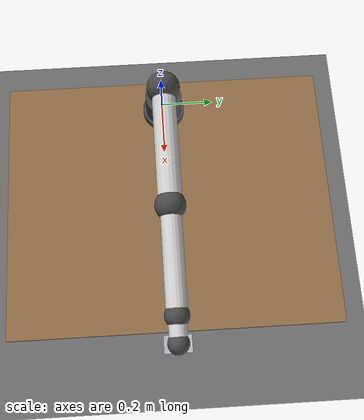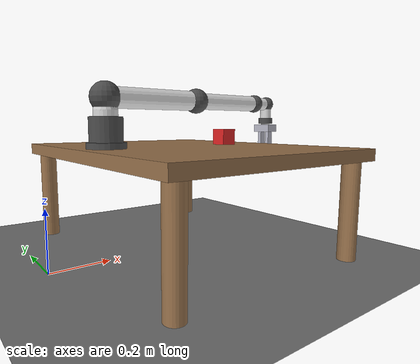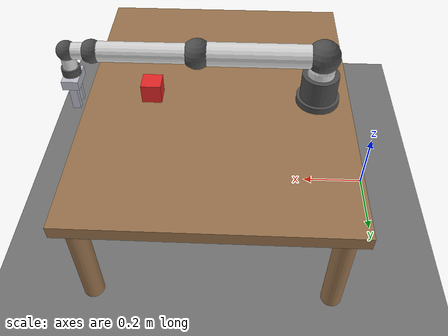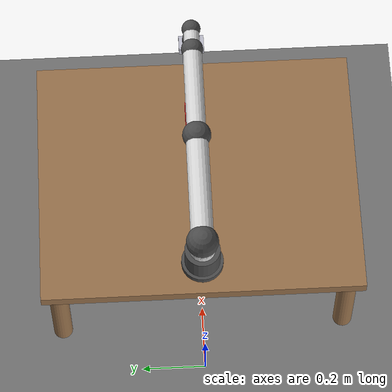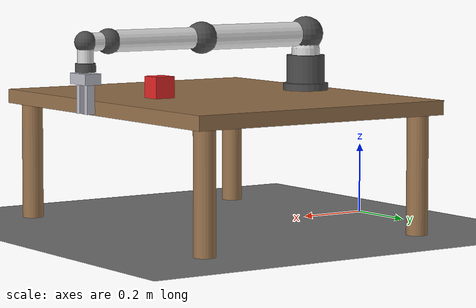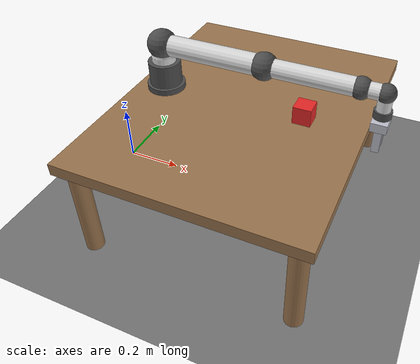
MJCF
<mujoco model="jaka_zu5_sim">
  <compiler angle="radian" meshdir="." autolimits="true"/>

  <option timestep="0.002" gravity="0 0 -9.81" integrator="implicitfast" noslip_iterations="3"/>

  <visual>
    <quality shadowsize="0"/>
  </visual>

  <default>
    <joint damping="5" armature="0.1"/>
    <geom condim="4" friction="1 0.5 0.01"/>
    <position kp="100" ctrlrange="-6.2832 6.2832"/>
  </default>

  <asset>
    <texture name="grid" type="2d" builtin="checker" rgb1="0.4 0.4 0.4" rgb2="0.5 0.5 0.5" width="512" height="512"/>
    <material name="grid_mat" texture="grid" texrepeat="8 8" reflectance="0.1"/>
    <material name="arm_mat" rgba="0.85 0.85 0.85 1"/>
    <material name="joint_mat" rgba="0.3 0.3 0.3 1"/>
    <material name="gripper_mat" rgba="0.75 0.75 0.8 1" specular="0.4" shininess="0.3"/>
    <material name="table_mat" rgba="0.6 0.45 0.3 1"/>
    <material name="red_mat" rgba="0.9 0.15 0.15 1"/>
    <material name="green_mat" rgba="0.15 0.8 0.15 1"/>
  </asset>

  <worldbody>
    <!-- Floor -->
    <geom name="floor" type="plane" size="2 2 0.01" material="grid_mat" pos="0 0 0"/>
    <light name="overhead" pos="0.5 0 2.5" dir="0 0 -1" diffuse="0.8 0.8 0.8" specular="0.3 0.3 0.3"/>
    <light name="fill" pos="-1 1 2" dir="0.3 -0.3 -1" diffuse="0.4 0.4 0.4"/>

    <!-- Table -->
    <body name="table" pos="0.5 0 0.35">
      <geom name="table_top" type="box" size="0.4 0.5 0.02" pos="0 0 0" material="table_mat" mass="20"/>
      <geom name="table_leg1" type="cylinder" size="0.03 0.175" pos="0.35 0.45 -0.195" material="table_mat"/>
      <geom name="table_leg2" type="cylinder" size="0.03 0.175" pos="-0.35 0.45 -0.195" material="table_mat"/>
      <geom name="table_leg3" type="cylinder" size="0.03 0.175" pos="0.35 -0.45 -0.195" material="table_mat"/>
      <geom name="table_leg4" type="cylinder" size="0.03 0.175" pos="-0.35 -0.45 -0.195" material="table_mat"/>
    </body>

    <!-- Objects on table -->
    <body name="red_cube" pos="0.70 0 0.400">
      <freejoint name="red_cube_joint"/>
      <geom name="red_cube_geom" type="box" size="0.03 0.03 0.03" material="red_mat" mass="0.08" friction="3 0.5 0.01" solref="0.01 1" solimp="0.99 0.99 0.01"/>
    </body>
<!-- JAKA Zu5 Robot Arm (mounted on table) -->
    <body name="base_link" pos="0.2 0 0.37">
      <geom name="base_geom" type="cylinder" size="0.065 0.02" material="joint_mat" mass="0.515"/>

      <!-- Joint 1: Base rotation (Z-axis) -->
      <body name="link1" pos="0 0 0.041">
        <joint name="joint1" type="hinge" axis="0 0 1" range="-6.2832 6.2832" damping="80"/>
        <geom name="link1_base" type="cylinder" size="0.055 0.04" pos="0 0 0.02" material="joint_mat" mass="0.5"/>
        <geom name="link1_arm" type="capsule" fromto="0 0 0.04 0 0 0.08" size="0.04" material="arm_mat" mass="1.428"/>

        <!-- Joint 2: Shoulder (Y-axis, pitch) -->
        <body name="link2" pos="0 0 0.121">
          <joint name="joint2" type="hinge" axis="0 1 0" range="-1.4835 4.6252" damping="240"/>
          <geom name="link2_joint" type="sphere" size="0.05" material="joint_mat" mass="0.5"/>
          <geom name="link2_arm" type="capsule" fromto="0 0 0 0.36 0 0" size="0.035" material="arm_mat" mass="4.962"/>

          <!-- Joint 3: Elbow (Y-axis, pitch) -->
          <body name="link3" pos="0.36 0 0">
            <joint name="joint3" type="hinge" axis="0 1 0" range="-3.0543 3.0543" damping="160"/>
            <geom name="link3_joint" type="sphere" size="0.045" material="joint_mat" mass="0.4"/>
            <geom name="link3_arm" type="capsule" fromto="0 0 0 0.303 0 0" size="0.03" material="arm_mat" mass="1.710"/>

            <!-- Joint 4: Wrist 1 (X-axis, roll) -->
            <body name="link4" pos="0.303 0 0">
              <joint name="joint4" type="hinge" axis="1 0 0" range="-1.4835 4.6252" damping="40"/>
              <geom name="link4_joint" type="sphere" size="0.035" material="joint_mat" mass="0.2"/>
              <geom name="link4_arm" type="capsule" fromto="0 0 0 0.073 0 0" size="0.025" material="arm_mat" mass="0.507"/>

              <!-- Joint 5: Wrist 2 (Y-axis, pitch) -->
              <body name="link5" pos="0.073 0 0">
                <joint name="joint5" type="hinge" axis="0 1 0" range="-6.2832 6.2832" damping="80"/>
                <geom name="link5_joint" type="sphere" size="0.03" material="joint_mat" mass="0.2"/>
                <geom name="link5_arm" type="capsule" fromto="0 0 0 0 0 -0.069" size="0.022" material="arm_mat" mass="0.607"/>

                <!-- Joint 6: Wrist 3 (Z-axis, roll) -->
                <body name="link6" pos="0 0 -0.069">
                  <joint name="joint6" type="hinge" axis="0 0 1" range="-6.2832 6.2832" damping="20"/>
                  <geom name="link6_flange" type="cylinder" size="0.028 0.012" material="joint_mat" mass="0.180"/>

                  <!-- 2-Finger Parallel Gripper -->
                  <body name="gripper_base" pos="0 0 -0.03">
                    <geom name="gripper_mount" type="box" size="0.025 0.04 0.015" material="gripper_mat" mass="0.3"/>

                    <!-- Left Finger -->
                    <body name="left_finger" pos="0 0.02 -0.015">
                      <joint name="finger_left" type="slide" axis="0 1 0" range="0 0.04" damping="5"/>
                      <geom name="left_finger_geom" type="box" size="0.012 0.008 0.04" pos="0 0 -0.04" material="gripper_mat" mass="0.05" friction="3 0.5 0.01" solref="0.01 1" solimp="0.99 0.99 0.01"/>
                    </body>

                    <!-- Right Finger (mirrored) -->
                    <body name="right_finger" pos="0 -0.02 -0.015">
                      <joint name="finger_right" type="slide" axis="0 -1 0" range="0 0.04" damping="5"/>
                      <geom name="right_finger_geom" type="box" size="0.012 0.008 0.04" pos="0 0 -0.04" material="gripper_mat" mass="0.05" friction="3 0.5 0.01" solref="0.01 1" solimp="0.99 0.99 0.01"/>
                    </body>

                    <!-- Wrist Camera -->
                    <camera name="wrist_cam" pos="0.4920 0.0127 0.2826" xyaxes="0.0052 1.0000 0.0001 -0.7062 0.0036 0.7080" fovy="41"/>
                  </body>
                </body>
              </body>
            </body>
          </body>
        </body>
      </body>
    </body>

    <!-- External Camera (fixed, 45-degree overhead view of workspace) -->
    <camera name="external_cam" pos="0.4852 0.9268 0.8646" xyaxes="-0.9999 -0.0111 0.0000 0.0042 -0.3784 0.9256" fovy="55"/>
  </worldbody>

  <!-- Gripper finger symmetry constraint -->
  <equality>
    <joint joint1="finger_left" joint2="finger_right" polycoef="0 1 0 0 0"/>
  </equality>

  <!-- Home pose: arm near workspace, gripper half-open, pointing down -->
  <!-- qpos order: red_cube(7), J1-J6(6), finger_left(1), finger_right(1) -->
  <!-- ctrl order: act_joint1-6(6), act_gripper(1) -->
  <keyframe>
    <key name="home"
         qpos="0.70 0 0.400 1 0 0 0  0 -1.48 1.8 0 -0.32 0  0.03 0.03"
         ctrl="0 -1.48 1.8 0 -0.32 0  0.03"/>
  </keyframe>

  <actuator>
    <!-- Arm joint position actuators -->
    <position name="act_joint1" joint="joint1" kp="400" ctrlrange="-6.2832 6.2832" forcerange="-150 150"/>
    <position name="act_joint2" joint="joint2" kp="1200" ctrlrange="-1.4835 4.6252" forcerange="-150 150"/>
    <position name="act_joint3" joint="joint3" kp="800" ctrlrange="-3.0543 3.0543" forcerange="-150 150"/>
    <position name="act_joint4" joint="joint4" kp="200" ctrlrange="-1.4835 4.6252" forcerange="-28 28"/>
    <position name="act_joint5" joint="joint5" kp="400" ctrlrange="-6.2832 6.2832" forcerange="-28 28"/>
    <position name="act_joint6" joint="joint6" kp="100" ctrlrange="-6.2832 6.2832" forcerange="-28 28"/>
    <!-- Gripper actuator (controls both fingers via equality constraint) -->
    <position name="act_gripper" joint="finger_left" kp="1000" ctrlrange="0 0.04"/>
  </actuator>
</mujoco>
